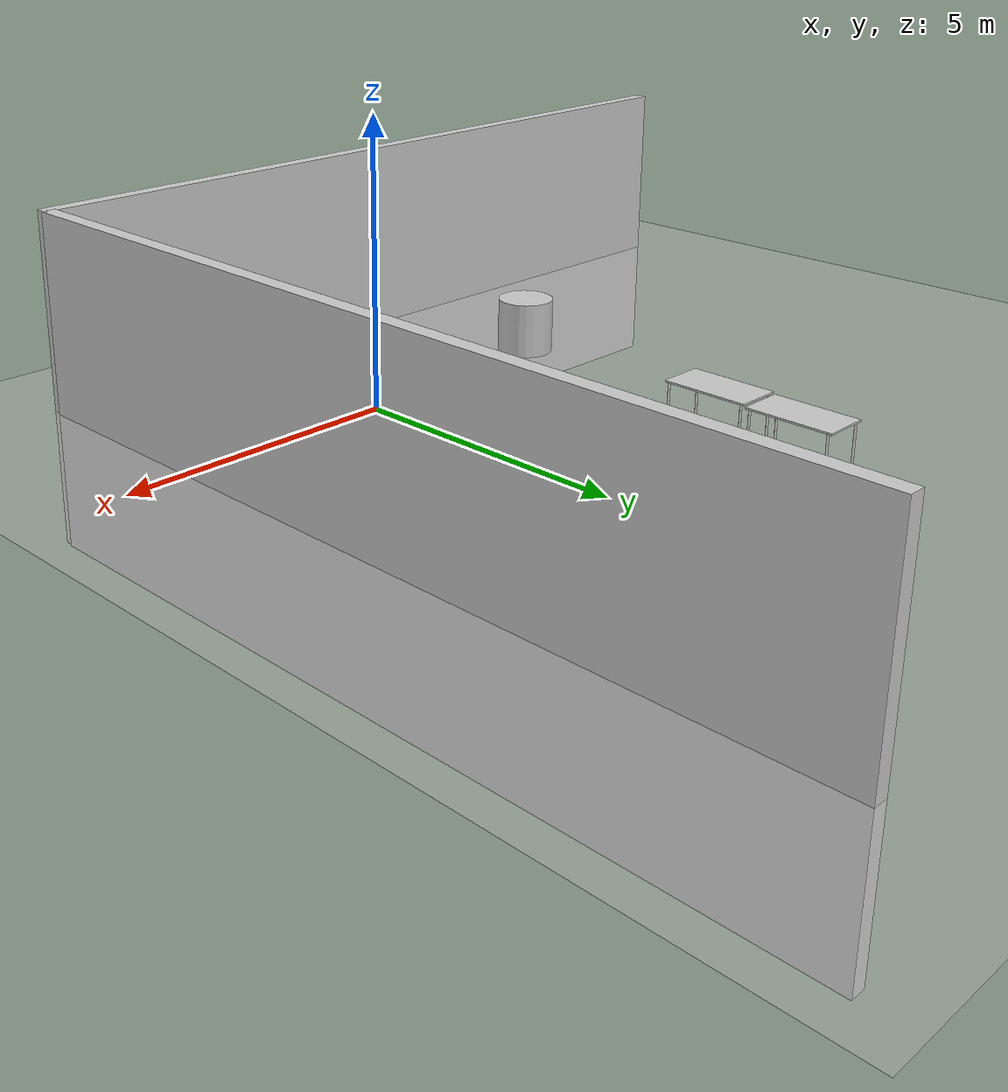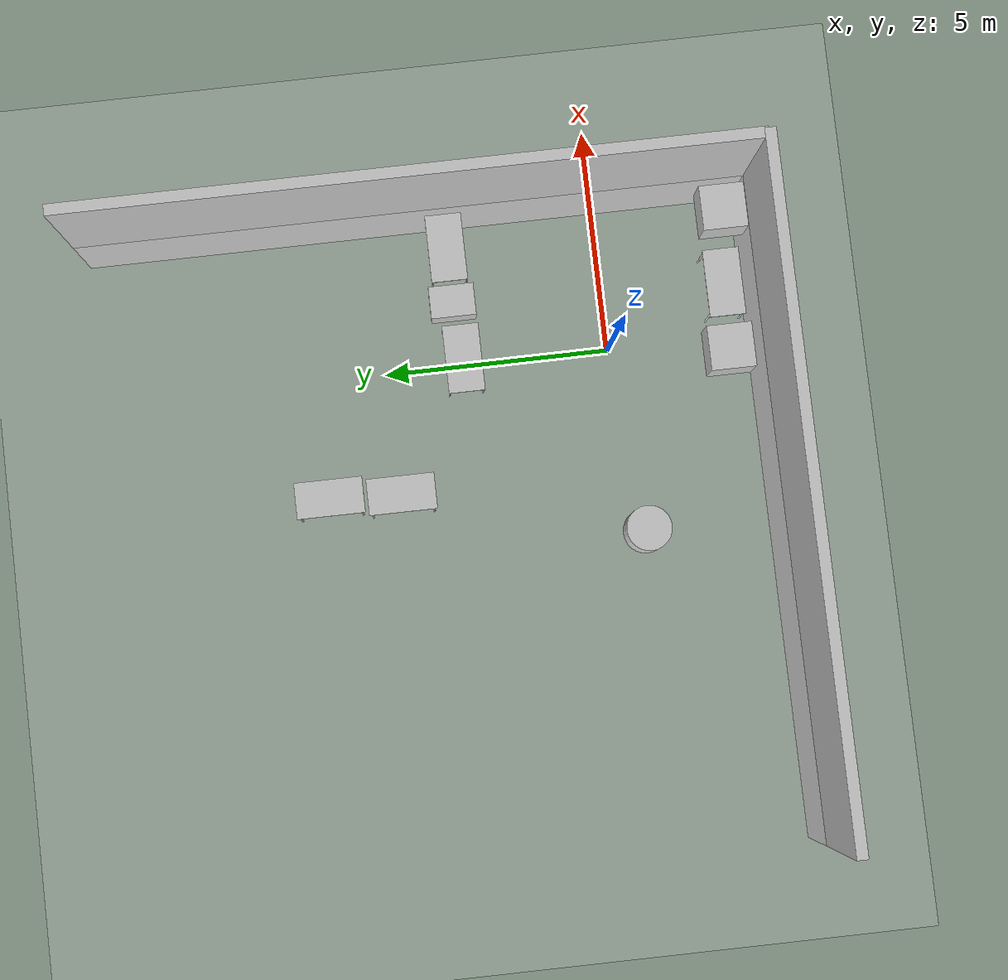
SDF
<sdf version='1.9'>
  <world name='default'>
    <gravity>0 0 -9.8</gravity>
    <magnetic_field>6e-06 2.3e-05 -4.2e-05</magnetic_field>
    <atmosphere type='adiabatic'/>
    <physics type='ode'>
      <max_step_size>0.001</max_step_size>
      <real_time_factor>1</real_time_factor>
      <real_time_update_rate>1000</real_time_update_rate>
    </physics>
    <scene>
      <ambient>1 1 1 1</ambient>
      <background>0.8 0.8 0.8 1</background>
      <shadows>true</shadows>
    </scene>
    <gui fullscreen='false'>
      <camera name='user_camera'>
        <pose>9.04491 1.84618 16.4829 0 1.23564 -3.13897</pose>
        <view_controller>orbit</view_controller>
        <projection_type>perspective</projection_type>
      </camera>
    </gui>
    <model name='ground_plane'>
      <static>true</static>
      <link name='link'>
        <collision name='collision'>
          <geometry>
            <plane>
              <normal>0 0 1</normal>
              <size>100 100</size>
            </plane>
          </geometry>
          <surface>
            <friction>
              <ode>
                <mu>100</mu>
                <mu2>50</mu2>
              </ode>
              <torsional>
                <ode/>
              </torsional>
            </friction>
            <contact>
              <ode/>
            </contact>
            <bounce/>
          </surface>
          <max_contacts>10</max_contacts>
        </collision>
        <visual name='visual'>
          <cast_shadows>false</cast_shadows>
          <geometry>
            <plane>
              <normal>0 0 1</normal>
              <size>100 100</size>
            </plane>
          </geometry>
          <material>
            <ambient>0.8 0.8 0.8 1</ambient>
            <diffuse>0.8 0.8 0.8 1</diffuse>
            <specular>0.8 0.8 0.8 1</specular>
          </material>
        </visual>
        <self_collide>false</self_collide>
        <enable_wind>false</enable_wind>
        <kinematic>false</kinematic>
        <pose>0 0 0 0 -0 0</pose>
        <inertial>
          <pose>0 0 0 0 -0 0</pose>
          <mass>1</mass>
          <inertia>
            <ixx>1</ixx>
            <ixy>0</ixy>
            <ixz>0</ixz>
            <iyy>1</iyy>
            <iyz>0</iyz>
            <izz>1</izz>
          </inertia>
        </inertial>
      </link>
      <pose>0 0 0 0 -0 0</pose>
      <self_collide>false</self_collide>
    </model>
    <model name='table'>
      <static>true</static>
      <link name='link'>
        <collision name='surface'>
          <pose>0 0 1 0 -0 0</pose>
          <geometry>
            <box>
              <size>1.5 0.8 0.03</size>
            </box>
          </geometry>
          <surface>
            <friction>
              <ode>
                <mu>0.59999999999999998</mu>
                <mu2>0.59999999999999998</mu2>
              </ode>
              <torsional>
                <ode/>
              </torsional>
            </friction>
            <contact>
              <ode/>
            </contact>
            <bounce/>
          </surface>
          <max_contacts>10</max_contacts>
        </collision>
        <visual name='visual1'>
          <pose>0 0 1 0 -0 0</pose>
          <geometry>
            <box>
              <size>1.5 0.8 0.03</size>
            </box>
          </geometry>
          <material>
            <ambient>0.8 0.8 0.8 1</ambient>
            <diffuse>0.8 0.8 0.8 1</diffuse>
            <specular>0.8 0.8 0.8 1</specular>
          </material>
        </visual>
        <collision name='front_left_leg'>
          <pose>0.68 0.38 0.5 0 -0 0</pose>
          <geometry>
            <cylinder>
              <radius>0.02</radius>
              <length>1</length>
            </cylinder>
          </geometry>
          <max_contacts>10</max_contacts>
          <surface>
            <contact>
              <ode/>
            </contact>
            <bounce/>
            <friction>
              <torsional>
                <ode/>
              </torsional>
              <ode/>
            </friction>
          </surface>
        </collision>
        <visual name='front_left_leg'>
          <pose>0.68 0.38 0.5 0 -0 0</pose>
          <geometry>
            <cylinder>
              <radius>0.02</radius>
              <length>1</length>
            </cylinder>
          </geometry>
          <material>
            <ambient>0.8 0.8 0.8 1</ambient>
            <diffuse>0.8 0.8 0.8 1</diffuse>
            <specular>0.8 0.8 0.8 1</specular>
          </material>
        </visual>
        <collision name='front_right_leg'>
          <pose>0.68 -0.38 0.5 0 -0 0</pose>
          <geometry>
            <cylinder>
              <radius>0.02</radius>
              <length>1</length>
            </cylinder>
          </geometry>
          <max_contacts>10</max_contacts>
          <surface>
            <contact>
              <ode/>
            </contact>
            <bounce/>
            <friction>
              <torsional>
                <ode/>
              </torsional>
              <ode/>
            </friction>
          </surface>
        </collision>
        <visual name='front_right_leg'>
          <pose>0.68 -0.38 0.5 0 -0 0</pose>
          <geometry>
            <cylinder>
              <radius>0.02</radius>
              <length>1</length>
            </cylinder>
          </geometry>
          <material>
            <ambient>0.8 0.8 0.8 1</ambient>
            <diffuse>0.8 0.8 0.8 1</diffuse>
            <specular>0.8 0.8 0.8 1</specular>
          </material>
        </visual>
        <collision name='back_right_leg'>
          <pose>-0.68 -0.38 0.5 0 -0 0</pose>
          <geometry>
            <cylinder>
              <radius>0.02</radius>
              <length>1</length>
            </cylinder>
          </geometry>
          <max_contacts>10</max_contacts>
          <surface>
            <contact>
              <ode/>
            </contact>
            <bounce/>
            <friction>
              <torsional>
                <ode/>
              </torsional>
              <ode/>
            </friction>
          </surface>
        </collision>
        <visual name='back_right_leg'>
          <pose>-0.68 -0.38 0.5 0 -0 0</pose>
          <geometry>
            <cylinder>
              <radius>0.02</radius>
              <length>1</length>
            </cylinder>
          </geometry>
          <material>
            <ambient>0.8 0.8 0.8 1</ambient>
            <diffuse>0.8 0.8 0.8 1</diffuse>
            <specular>0.8 0.8 0.8 1</specular>
          </material>
        </visual>
        <collision name='back_left_leg'>
          <pose>-0.68 0.38 0.5 0 -0 0</pose>
          <geometry>
            <cylinder>
              <radius>0.02</radius>
              <length>1</length>
            </cylinder>
          </geometry>
          <max_contacts>10</max_contacts>
          <surface>
            <contact>
              <ode/>
            </contact>
            <bounce/>
            <friction>
              <torsional>
                <ode/>
              </torsional>
              <ode/>
            </friction>
          </surface>
        </collision>
        <visual name='back_left_leg'>
          <pose>-0.68 0.38 0.5 0 -0 0</pose>
          <geometry>
            <cylinder>
              <radius>0.02</radius>
              <length>1</length>
            </cylinder>
          </geometry>
          <material>
            <ambient>0.8 0.8 0.8 1</ambient>
            <diffuse>0.8 0.8 0.8 1</diffuse>
            <specular>0.8 0.8 0.8 1</specular>
          </material>
        </visual>
        <self_collide>false</self_collide>
        <enable_wind>false</enable_wind>
        <kinematic>false</kinematic>
        <pose>0 0 0 0 -0 0</pose>
        <inertial>
          <pose>0 0 0 0 -0 0</pose>
          <mass>1</mass>
          <inertia>
            <ixx>1</ixx>
            <ixy>0</ixy>
            <ixz>0</ixz>
            <iyy>1</iyy>
            <iyz>0</iyz>
            <izz>1</izz>
          </inertia>
        </inertial>
      </link>
      <pose>0.063923 3.25007 0 0 -0 0</pose>
      <self_collide>false</self_collide>
    </model>
    <model name='table_clone'>
      <static>true</static>
      <link name='link'>
        <collision name='surface'>
          <pose>0 0 1 0 -0 0</pose>
          <geometry>
            <box>
              <size>1.5 0.8 0.03</size>
            </box>
          </geometry>
          <surface>
            <friction>
              <ode>
                <mu>0.59999999999999998</mu>
                <mu2>0.59999999999999998</mu2>
              </ode>
              <torsional>
                <ode/>
              </torsional>
            </friction>
            <contact>
              <ode/>
            </contact>
            <bounce/>
          </surface>
          <max_contacts>10</max_contacts>
        </collision>
        <visual name='visual1'>
          <pose>0 0 1 0 -0 0</pose>
          <geometry>
            <box>
              <size>1.5 0.8 0.03</size>
            </box>
          </geometry>
          <material>
            <ambient>0.8 0.8 0.8 1</ambient>
            <diffuse>0.8 0.8 0.8 1</diffuse>
            <specular>0.8 0.8 0.8 1</specular>
          </material>
        </visual>
        <collision name='front_left_leg'>
          <pose>0.68 0.38 0.5 0 -0 0</pose>
          <geometry>
            <cylinder>
              <radius>0.02</radius>
              <length>1</length>
            </cylinder>
          </geometry>
          <max_contacts>10</max_contacts>
          <surface>
            <contact>
              <ode/>
            </contact>
            <bounce/>
            <friction>
              <torsional>
                <ode/>
              </torsional>
              <ode/>
            </friction>
          </surface>
        </collision>
        <visual name='front_left_leg'>
          <pose>0.68 0.38 0.5 0 -0 0</pose>
          <geometry>
            <cylinder>
              <radius>0.02</radius>
              <length>1</length>
            </cylinder>
          </geometry>
          <material>
            <ambient>0.8 0.8 0.8 1</ambient>
            <diffuse>0.8 0.8 0.8 1</diffuse>
            <specular>0.8 0.8 0.8 1</specular>
          </material>
        </visual>
        <collision name='front_right_leg'>
          <pose>0.68 -0.38 0.5 0 -0 0</pose>
          <geometry>
            <cylinder>
              <radius>0.02</radius>
              <length>1</length>
            </cylinder>
          </geometry>
          <max_contacts>10</max_contacts>
          <surface>
            <contact>
              <ode/>
            </contact>
            <bounce/>
            <friction>
              <torsional>
                <ode/>
              </torsional>
              <ode/>
            </friction>
          </surface>
        </collision>
        <visual name='front_right_leg'>
          <pose>0.68 -0.38 0.5 0 -0 0</pose>
          <geometry>
            <cylinder>
              <radius>0.02</radius>
              <length>1</length>
            </cylinder>
          </geometry>
          <material>
            <ambient>0.8 0.8 0.8 1</ambient>
            <diffuse>0.8 0.8 0.8 1</diffuse>
            <specular>0.8 0.8 0.8 1</specular>
          </material>
        </visual>
        <collision name='back_right_leg'>
          <pose>-0.68 -0.38 0.5 0 -0 0</pose>
          <geometry>
            <cylinder>
              <radius>0.02</radius>
              <length>1</length>
            </cylinder>
          </geometry>
          <max_contacts>10</max_contacts>
          <surface>
            <contact>
              <ode/>
            </contact>
            <bounce/>
            <friction>
              <torsional>
                <ode/>
              </torsional>
              <ode/>
            </friction>
          </surface>
        </collision>
        <visual name='back_right_leg'>
          <pose>-0.68 -0.38 0.5 0 -0 0</pose>
          <geometry>
            <cylinder>
              <radius>0.02</radius>
              <length>1</length>
            </cylinder>
          </geometry>
          <material>
            <ambient>0.8 0.8 0.8 1</ambient>
            <diffuse>0.8 0.8 0.8 1</diffuse>
            <specular>0.8 0.8 0.8 1</specular>
          </material>
        </visual>
        <collision name='back_left_leg'>
          <pose>-0.68 0.38 0.5 0 -0 0</pose>
          <geometry>
            <cylinder>
              <radius>0.02</radius>
              <length>1</length>
            </cylinder>
          </geometry>
          <max_contacts>10</max_contacts>
          <surface>
            <contact>
              <ode/>
            </contact>
            <bounce/>
            <friction>
              <torsional>
                <ode/>
              </torsional>
              <ode/>
            </friction>
          </surface>
        </collision>
        <visual name='back_left_leg'>
          <pose>-0.68 0.38 0.5 0 -0 0</pose>
          <geometry>
            <cylinder>
              <radius>0.02</radius>
              <length>1</length>
            </cylinder>
          </geometry>
          <material>
            <ambient>0.8 0.8 0.8 1</ambient>
            <diffuse>0.8 0.8 0.8 1</diffuse>
            <specular>0.8 0.8 0.8 1</specular>
          </material>
        </visual>
        <self_collide>false</self_collide>
        <enable_wind>false</enable_wind>
        <kinematic>false</kinematic>
        <pose>0 0 0 0 -0 0</pose>
        <inertial>
          <pose>0 0 0 0 -0 0</pose>
          <mass>1</mass>
          <inertia>
            <ixx>1</ixx>
            <ixy>0</ixy>
            <ixz>0</ixz>
            <iyy>1</iyy>
            <iyz>0</iyz>
            <izz>1</izz>
          </inertia>
        </inertial>
      </link>
      <pose>-2.76781 4.92557 0 0 -0 1.5708</pose>
      <self_collide>false</self_collide>
    </model>
    <model name='unit_box'>
      <pose>2.81303 -2.84881 0.5 0 -0 0</pose>
      <link name='link'>
        <inertial>
          <mass>1</mass>
          <inertia>
            <ixx>0.16666700000000001</ixx>
            <ixy>0</ixy>
            <ixz>0</ixz>
            <iyy>0.16666700000000001</iyy>
            <iyz>0</iyz>
            <izz>0.16666700000000001</izz>
          </inertia>
          <pose>0 0 0 0 -0 0</pose>
        </inertial>
        <collision name='collision'>
          <geometry>
            <box>
              <size>1 1 1</size>
            </box>
          </geometry>
          <max_contacts>10</max_contacts>
          <surface>
            <contact>
              <ode/>
            </contact>
            <bounce/>
            <friction>
              <torsional>
                <ode/>
              </torsional>
              <ode/>
            </friction>
          </surface>
        </collision>
        <visual name='visual'>
          <geometry>
            <box>
              <size>1 1 1</size>
            </box>
          </geometry>
          <material>
            <ambient>0.8 0.8 0.8 1</ambient>
            <diffuse>0.8 0.8 0.8 1</diffuse>
            <specular>0.8 0.8 0.8 1</specular>
          </material>
        </visual>
        <self_collide>false</self_collide>
        <enable_wind>false</enable_wind>
        <kinematic>false</kinematic>
        <pose>0 0 0 0 -0 0</pose>
      </link>
      <static>false</static>
      <self_collide>false</self_collide>
    </model>
    <model name='unit_box_0'>
      <pose>-0.312824 -2.65045 0.5 0 -0 0</pose>
      <link name='link'>
        <inertial>
          <mass>1</mass>
          <inertia>
            <ixx>0.16666700000000001</ixx>
            <ixy>0</ixy>
            <ixz>0</ixz>
            <iyy>0.16666700000000001</iyy>
            <iyz>0</iyz>
            <izz>0.16666700000000001</izz>
          </inertia>
          <pose>0 0 0 0 -0 0</pose>
        </inertial>
        <collision name='collision'>
          <geometry>
            <box>
              <size>1 1.00001 1</size>
            </box>
          </geometry>
          <max_contacts>10</max_contacts>
          <surface>
            <contact>
              <ode/>
            </contact>
            <bounce/>
            <friction>
              <torsional>
                <ode/>
              </torsional>
              <ode/>
            </friction>
          </surface>
        </collision>
        <visual name='visual'>
          <geometry>
            <box>
              <size>1 1.00001 1</size>
            </box>
          </geometry>
          <material>
            <ambient>0.8 0.8 0.8 1</ambient>
            <diffuse>0.8 0.8 0.8 1</diffuse>
            <specular>0.8 0.8 0.8 1</specular>
          </material>
        </visual>
        <self_collide>false</self_collide>
        <enable_wind>false</enable_wind>
        <kinematic>false</kinematic>
        <pose>0 0 0 0 -0 0</pose>
      </link>
      <static>false</static>
      <self_collide>false</self_collide>
    </model>
    <model name='unit_box_0_clone'>
      <pose>3.78673 4.05805 0.5 0 -0 0</pose>
      <link name='link'>
        <inertial>
          <mass>1</mass>
          <inertia>
            <ixx>0.16666700000000001</ixx>
            <ixy>0</ixy>
            <ixz>0</ixz>
            <iyy>0.16666700000000001</iyy>
            <iyz>0</iyz>
            <izz>0.16666700000000001</izz>
          </inertia>
          <pose>0 0 0 0 -0 0</pose>
        </inertial>
        <collision name='collision'>
          <geometry>
            <box>
              <size>0.251662 15.3227 5.91896</size>
            </box>
          </geometry>
          <max_contacts>10</max_contacts>
          <surface>
            <contact>
              <ode/>
            </contact>
            <bounce/>
            <friction>
              <torsional>
                <ode/>
              </torsional>
              <ode/>
            </friction>
          </surface>
        </collision>
        <visual name='visual'>
          <geometry>
            <box>
              <size>0.251662 15.3227 5.91896</size>
            </box>
          </geometry>
          <material>
            <ambient>0.8 0.8 0.8 1</ambient>
            <diffuse>0.8 0.8 0.8 1</diffuse>
            <specular>0.8 0.8 0.8 1</specular>
          </material>
        </visual>
        <self_collide>false</self_collide>
        <enable_wind>false</enable_wind>
        <kinematic>false</kinematic>
        <pose>0 0 0 0 -0 0</pose>
      </link>
      <static>false</static>
      <self_collide>false</self_collide>
    </model>
    <model name='unit_box_0_clone_clone'>
      <pose>-3.78057 -3.65167 0.5 0 0 -1.5708</pose>
      <link name='link'>
        <inertial>
          <mass>1</mass>
          <inertia>
            <ixx>0.16666700000000001</ixx>
            <ixy>0</ixy>
            <ixz>0</ixz>
            <iyy>0.16666700000000001</iyy>
            <iyz>0</iyz>
            <izz>0.16666700000000001</izz>
          </inertia>
          <pose>0 0 0 0 -0 0</pose>
        </inertial>
        <collision name='collision'>
          <geometry>
            <box>
              <size>0.251662 15.3227 5.91896</size>
            </box>
          </geometry>
          <max_contacts>10</max_contacts>
          <surface>
            <contact>
              <ode/>
            </contact>
            <bounce/>
            <friction>
              <torsional>
                <ode/>
              </torsional>
              <ode/>
            </friction>
          </surface>
        </collision>
        <visual name='visual'>
          <geometry>
            <box>
              <size>0.251662 15.3227 5.91896</size>
            </box>
          </geometry>
          <material>
            <ambient>0.8 0.8 0.8 1</ambient>
            <diffuse>0.8 0.8 0.8 1</diffuse>
            <specular>0.8 0.8 0.8 1</specular>
          </material>
        </visual>
        <self_collide>false</self_collide>
        <enable_wind>false</enable_wind>
        <kinematic>false</kinematic>
        <pose>0 0 0 0 -0 0</pose>
      </link>
      <static>false</static>
      <self_collide>false</self_collide>
    </model>
    <model name='unit_box_clone'>
      <pose>1.38872 3.35459 0.5 0 -0 0</pose>
      <link name='link'>
        <inertial>
          <mass>1</mass>
          <inertia>
            <ixx>0.16666700000000001</ixx>
            <ixy>0</ixy>
            <ixz>0</ixz>
            <iyy>0.16666700000000001</iyy>
            <iyz>0</iyz>
            <izz>0.16666700000000001</izz>
          </inertia>
          <pose>0 0 0 0 -0 0</pose>
        </inertial>
        <collision name='collision'>
          <geometry>
            <box>
              <size>0.713247 1 0.665449</size>
            </box>
          </geometry>
          <max_contacts>10</max_contacts>
          <surface>
            <contact>
              <ode/>
            </contact>
            <bounce/>
            <friction>
              <torsional>
                <ode/>
              </torsional>
              <ode/>
            </friction>
          </surface>
        </collision>
        <visual name='visual'>
          <geometry>
            <box>
              <size>0.713247 1 0.665449</size>
            </box>
          </geometry>
          <material>
            <ambient>0.8 0.8 0.8 1</ambient>
            <diffuse>0.8 0.8 0.8 1</diffuse>
            <specular>0.8 0.8 0.8 1</specular>
          </material>
        </visual>
        <self_collide>false</self_collide>
        <enable_wind>false</enable_wind>
        <kinematic>false</kinematic>
        <pose>0 0 0 0 -0 0</pose>
      </link>
      <static>false</static>
      <self_collide>false</self_collide>
    </model>
    <model name='table_clone_clone'>
      <static>true</static>
      <link name='link'>
        <collision name='surface'>
          <pose>0 0 1 0 -0 0</pose>
          <geometry>
            <box>
              <size>1.5 0.8 0.03</size>
            </box>
          </geometry>
          <surface>
            <friction>
              <ode>
                <mu>0.59999999999999998</mu>
                <mu2>0.59999999999999998</mu2>
              </ode>
              <torsional>
                <ode/>
              </torsional>
            </friction>
            <contact>
              <ode/>
            </contact>
            <bounce/>
          </surface>
          <max_contacts>10</max_contacts>
        </collision>
        <visual name='visual1'>
          <pose>0 0 1 0 -0 0</pose>
          <geometry>
            <box>
              <size>1.5 0.8 0.03</size>
            </box>
          </geometry>
          <material>
            <ambient>0.8 0.8 0.8 1</ambient>
            <diffuse>0.8 0.8 0.8 1</diffuse>
            <specular>0.8 0.8 0.8 1</specular>
          </material>
        </visual>
        <collision name='front_left_leg'>
          <pose>0.68 0.38 0.5 0 -0 0</pose>
          <geometry>
            <cylinder>
              <radius>0.02</radius>
              <length>1</length>
            </cylinder>
          </geometry>
          <max_contacts>10</max_contacts>
          <surface>
            <contact>
              <ode/>
            </contact>
            <bounce/>
            <friction>
              <torsional>
                <ode/>
              </torsional>
              <ode/>
            </friction>
          </surface>
        </collision>
        <visual name='front_left_leg'>
          <pose>0.68 0.38 0.5 0 -0 0</pose>
          <geometry>
            <cylinder>
              <radius>0.02</radius>
              <length>1</length>
            </cylinder>
          </geometry>
          <material>
            <ambient>0.8 0.8 0.8 1</ambient>
            <diffuse>0.8 0.8 0.8 1</diffuse>
            <specular>0.8 0.8 0.8 1</specular>
          </material>
        </visual>
        <collision name='front_right_leg'>
          <pose>0.68 -0.38 0.5 0 -0 0</pose>
          <geometry>
            <cylinder>
              <radius>0.02</radius>
              <length>1</length>
            </cylinder>
          </geometry>
          <max_contacts>10</max_contacts>
          <surface>
            <contact>
              <ode/>
            </contact>
            <bounce/>
            <friction>
              <torsional>
                <ode/>
              </torsional>
              <ode/>
            </friction>
          </surface>
        </collision>
        <visual name='front_right_leg'>
          <pose>0.68 -0.38 0.5 0 -0 0</pose>
          <geometry>
            <cylinder>
              <radius>0.02</radius>
              <length>1</length>
            </cylinder>
          </geometry>
          <material>
            <ambient>0.8 0.8 0.8 1</ambient>
            <diffuse>0.8 0.8 0.8 1</diffuse>
            <specular>0.8 0.8 0.8 1</specular>
          </material>
        </visual>
        <collision name='back_right_leg'>
          <pose>-0.68 -0.38 0.5 0 -0 0</pose>
          <geometry>
            <cylinder>
              <radius>0.02</radius>
              <length>1</length>
            </cylinder>
          </geometry>
          <max_contacts>10</max_contacts>
          <surface>
            <contact>
              <ode/>
            </contact>
            <bounce/>
            <friction>
              <torsional>
                <ode/>
              </torsional>
              <ode/>
            </friction>
          </surface>
        </collision>
        <visual name='back_right_leg'>
          <pose>-0.68 -0.38 0.5 0 -0 0</pose>
          <geometry>
            <cylinder>
              <radius>0.02</radius>
              <length>1</length>
            </cylinder>
          </geometry>
          <material>
            <ambient>0.8 0.8 0.8 1</ambient>
            <diffuse>0.8 0.8 0.8 1</diffuse>
            <specular>0.8 0.8 0.8 1</specular>
          </material>
        </visual>
        <collision name='back_left_leg'>
          <pose>-0.68 0.38 0.5 0 -0 0</pose>
          <geometry>
            <cylinder>
              <radius>0.02</radius>
              <length>1</length>
            </cylinder>
          </geometry>
          <max_contacts>10</max_contacts>
          <surface>
            <contact>
              <ode/>
            </contact>
            <bounce/>
            <friction>
              <torsional>
                <ode/>
              </torsional>
              <ode/>
            </friction>
          </surface>
        </collision>
        <visual name='back_left_leg'>
          <pose>-0.68 0.38 0.5 0 -0 0</pose>
          <geometry>
            <cylinder>
              <radius>0.02</radius>
              <length>1</length>
            </cylinder>
          </geometry>
          <material>
            <ambient>0.8 0.8 0.8 1</ambient>
            <diffuse>0.8 0.8 0.8 1</diffuse>
            <specular>0.8 0.8 0.8 1</specular>
          </material>
        </visual>
        <self_collide>false</self_collide>
        <enable_wind>false</enable_wind>
        <kinematic>false</kinematic>
        <pose>0 0 0 0 -0 0</pose>
        <inertial>
          <pose>0 0 0 0 -0 0</pose>
          <mass>1</mass>
          <inertia>
            <ixx>1</ixx>
            <ixy>0</ixy>
            <ixz>0</ixz>
            <iyy>1</iyy>
            <iyz>0</iyz>
            <izz>1</izz>
          </inertia>
        </inertial>
      </link>
      <pose>1.11696 -2.65226 0 0 -0 0</pose>
      <self_collide>false</self_collide>
    </model>
    <model name='table_clone_clone_clone'>
      <static>true</static>
      <link name='link'>
        <collision name='surface'>
          <pose>0 0 1 0 -0 0</pose>
          <geometry>
            <box>
              <size>1.5 0.8 0.03</size>
            </box>
          </geometry>
          <surface>
            <friction>
              <ode>
                <mu>0.59999999999999998</mu>
                <mu2>0.59999999999999998</mu2>
              </ode>
              <torsional>
                <ode/>
              </torsional>
            </friction>
            <contact>
              <ode/>
            </contact>
            <bounce/>
          </surface>
          <max_contacts>10</max_contacts>
        </collision>
        <visual name='visual1'>
          <pose>0 0 1 0 -0 0</pose>
          <geometry>
            <box>
              <size>1.5 0.8 0.03</size>
            </box>
          </geometry>
          <material>
            <ambient>0.8 0.8 0.8 1</ambient>
            <diffuse>0.8 0.8 0.8 1</diffuse>
            <specular>0.8 0.8 0.8 1</specular>
          </material>
        </visual>
        <collision name='front_left_leg'>
          <pose>0.68 0.38 0.5 0 -0 0</pose>
          <geometry>
            <cylinder>
              <radius>0.02</radius>
              <length>1</length>
            </cylinder>
          </geometry>
          <max_contacts>10</max_contacts>
          <surface>
            <contact>
              <ode/>
            </contact>
            <bounce/>
            <friction>
              <torsional>
                <ode/>
              </torsional>
              <ode/>
            </friction>
          </surface>
        </collision>
        <visual name='front_left_leg'>
          <pose>0.68 0.38 0.5 0 -0 0</pose>
          <geometry>
            <cylinder>
              <radius>0.02</radius>
              <length>1</length>
            </cylinder>
          </geometry>
          <material>
            <ambient>0.8 0.8 0.8 1</ambient>
            <diffuse>0.8 0.8 0.8 1</diffuse>
            <specular>0.8 0.8 0.8 1</specular>
          </material>
        </visual>
        <collision name='front_right_leg'>
          <pose>0.68 -0.38 0.5 0 -0 0</pose>
          <geometry>
            <cylinder>
              <radius>0.02</radius>
              <length>1</length>
            </cylinder>
          </geometry>
          <max_contacts>10</max_contacts>
          <surface>
            <contact>
              <ode/>
            </contact>
            <bounce/>
            <friction>
              <torsional>
                <ode/>
              </torsional>
              <ode/>
            </friction>
          </surface>
        </collision>
        <visual name='front_right_leg'>
          <pose>0.68 -0.38 0.5 0 -0 0</pose>
          <geometry>
            <cylinder>
              <radius>0.02</radius>
              <length>1</length>
            </cylinder>
          </geometry>
          <material>
            <ambient>0.8 0.8 0.8 1</ambient>
            <diffuse>0.8 0.8 0.8 1</diffuse>
            <specular>0.8 0.8 0.8 1</specular>
          </material>
        </visual>
        <collision name='back_right_leg'>
          <pose>-0.68 -0.38 0.5 0 -0 0</pose>
          <geometry>
            <cylinder>
              <radius>0.02</radius>
              <length>1</length>
            </cylinder>
          </geometry>
          <max_contacts>10</max_contacts>
          <surface>
            <contact>
              <ode/>
            </contact>
            <bounce/>
            <friction>
              <torsional>
                <ode/>
              </torsional>
              <ode/>
            </friction>
          </surface>
        </collision>
        <visual name='back_right_leg'>
          <pose>-0.68 -0.38 0.5 0 -0 0</pose>
          <geometry>
            <cylinder>
              <radius>0.02</radius>
              <length>1</length>
            </cylinder>
          </geometry>
          <material>
            <ambient>0.8 0.8 0.8 1</ambient>
            <diffuse>0.8 0.8 0.8 1</diffuse>
            <specular>0.8 0.8 0.8 1</specular>
          </material>
        </visual>
        <collision name='back_left_leg'>
          <pose>-0.68 0.38 0.5 0 -0 0</pose>
          <geometry>
            <cylinder>
              <radius>0.02</radius>
              <length>1</length>
            </cylinder>
          </geometry>
          <max_contacts>10</max_contacts>
          <surface>
            <contact>
              <ode/>
            </contact>
            <bounce/>
            <friction>
              <torsional>
                <ode/>
              </torsional>
              <ode/>
            </friction>
          </surface>
        </collision>
        <visual name='back_left_leg'>
          <pose>-0.68 0.38 0.5 0 -0 0</pose>
          <geometry>
            <cylinder>
              <radius>0.02</radius>
              <length>1</length>
            </cylinder>
          </geometry>
          <material>
            <ambient>0.8 0.8 0.8 1</ambient>
            <diffuse>0.8 0.8 0.8 1</diffuse>
            <specular>0.8 0.8 0.8 1</specular>
          </material>
        </visual>
        <self_collide>false</self_collide>
        <enable_wind>false</enable_wind>
        <kinematic>false</kinematic>
        <pose>0 0 0 0 -0 0</pose>
        <inertial>
          <pose>0 0 0 0 -0 0</pose>
          <mass>1</mass>
          <inertia>
            <ixx>1</ixx>
            <ixy>0</ixy>
            <ixz>0</ixz>
            <iyy>1</iyy>
            <iyz>0</iyz>
            <izz>1</izz>
          </inertia>
        </inertial>
      </link>
      <pose>-2.68198 6.50374 0 0 -0 1.5708</pose>
      <self_collide>false</self_collide>
    </model>
    <model name='unit_cylinder'>
      <pose>-4.10278 -0.379177 0.5 0 -0 0</pose>
      <link name='link'>
        <inertial>
          <mass>1</mass>
          <inertia>
            <ixx>0.14583299999999999</ixx>
            <ixy>0</ixy>
            <ixz>0</ixz>
            <iyy>0.14583299999999999</iyy>
            <iyz>0</iyz>
            <izz>0.125</izz>
          </inertia>
          <pose>0 0 0 0 -0 0</pose>
        </inertial>
        <collision name='collision'>
          <geometry>
            <cylinder>
              <radius>0.5</radius>
              <length>1</length>
            </cylinder>
          </geometry>
          <max_contacts>10</max_contacts>
          <surface>
            <contact>
              <ode/>
            </contact>
            <bounce/>
            <friction>
              <torsional>
                <ode/>
              </torsional>
              <ode/>
            </friction>
          </surface>
        </collision>
        <visual name='visual'>
          <geometry>
            <cylinder>
              <radius>0.5</radius>
              <length>1</length>
            </cylinder>
          </geometry>
          <material>
            <ambient>0.8 0.8 0.8 1</ambient>
            <diffuse>0.8 0.8 0.8 1</diffuse>
            <specular>0.8 0.8 0.8 1</specular>
          </material>
        </visual>
        <self_collide>false</self_collide>
        <enable_wind>false</enable_wind>
        <kinematic>false</kinematic>
        <pose>0 0 0 0 -0 0</pose>
      </link>
      <static>false</static>
      <self_collide>false</self_collide>
    </model>
    <model name='table_clone_clone_0'>
      <static>true</static>
      <link name='link'>
        <collision name='surface'>
          <pose>0 0 1 0 -0 0</pose>
          <geometry>
            <box>
              <size>1.5 0.8 0.03</size>
            </box>
          </geometry>
          <surface>
            <friction>
              <ode>
                <mu>0.59999999999999998</mu>
                <mu2>0.59999999999999998</mu2>
              </ode>
              <torsional>
                <ode/>
              </torsional>
            </friction>
            <contact>
              <ode/>
            </contact>
            <bounce/>
          </surface>
          <max_contacts>10</max_contacts>
        </collision>
        <visual name='visual1'>
          <pose>0 0 1 0 -0 0</pose>
          <geometry>
            <box>
              <size>1.5 0.8 0.03</size>
            </box>
          </geometry>
          <material>
            <ambient>0.8 0.8 0.8 1</ambient>
            <diffuse>0.8 0.8 0.8 1</diffuse>
            <specular>0.8 0.8 0.8 1</specular>
          </material>
        </visual>
        <collision name='front_left_leg'>
          <pose>0.68 0.38 0.5 0 -0 0</pose>
          <geometry>
            <cylinder>
              <radius>0.02</radius>
              <length>1</length>
            </cylinder>
          </geometry>
          <max_contacts>10</max_contacts>
          <surface>
            <contact>
              <ode/>
            </contact>
            <bounce/>
            <friction>
              <torsional>
                <ode/>
              </torsional>
              <ode/>
            </friction>
          </surface>
        </collision>
        <visual name='front_left_leg'>
          <pose>0.68 0.38 0.5 0 -0 0</pose>
          <geometry>
            <cylinder>
              <radius>0.02</radius>
              <length>1</length>
            </cylinder>
          </geometry>
          <material>
            <ambient>0.8 0.8 0.8 1</ambient>
            <diffuse>0.8 0.8 0.8 1</diffuse>
            <specular>0.8 0.8 0.8 1</specular>
          </material>
        </visual>
        <collision name='front_right_leg'>
          <pose>0.68 -0.38 0.5 0 -0 0</pose>
          <geometry>
            <cylinder>
              <radius>0.02</radius>
              <length>1</length>
            </cylinder>
          </geometry>
          <max_contacts>10</max_contacts>
          <surface>
            <contact>
              <ode/>
            </contact>
            <bounce/>
            <friction>
              <torsional>
                <ode/>
              </torsional>
              <ode/>
            </friction>
          </surface>
        </collision>
        <visual name='front_right_leg'>
          <pose>0.68 -0.38 0.5 0 -0 0</pose>
          <geometry>
            <cylinder>
              <radius>0.02</radius>
              <length>1</length>
            </cylinder>
          </geometry>
          <material>
            <ambient>0.8 0.8 0.8 1</ambient>
            <diffuse>0.8 0.8 0.8 1</diffuse>
            <specular>0.8 0.8 0.8 1</specular>
          </material>
        </visual>
        <collision name='back_right_leg'>
          <pose>-0.68 -0.38 0.5 0 -0 0</pose>
          <geometry>
            <cylinder>
              <radius>0.02</radius>
              <length>1</length>
            </cylinder>
          </geometry>
          <max_contacts>10</max_contacts>
          <surface>
            <contact>
              <ode/>
            </contact>
            <bounce/>
            <friction>
              <torsional>
                <ode/>
              </torsional>
              <ode/>
            </friction>
          </surface>
        </collision>
        <visual name='back_right_leg'>
          <pose>-0.68 -0.38 0.5 0 -0 0</pose>
          <geometry>
            <cylinder>
              <radius>0.02</radius>
              <length>1</length>
            </cylinder>
          </geometry>
          <material>
            <ambient>0.8 0.8 0.8 1</ambient>
            <diffuse>0.8 0.8 0.8 1</diffuse>
            <specular>0.8 0.8 0.8 1</specular>
          </material>
        </visual>
        <collision name='back_left_leg'>
          <pose>-0.68 0.38 0.5 0 -0 0</pose>
          <geometry>
            <cylinder>
              <radius>0.02</radius>
              <length>1</length>
            </cylinder>
          </geometry>
          <max_contacts>10</max_contacts>
          <surface>
            <contact>
              <ode/>
            </contact>
            <bounce/>
            <friction>
              <torsional>
                <ode/>
              </torsional>
              <ode/>
            </friction>
          </surface>
        </collision>
        <visual name='back_left_leg'>
          <pose>-0.68 0.38 0.5 0 -0 0</pose>
          <geometry>
            <cylinder>
              <radius>0.02</radius>
              <length>1</length>
            </cylinder>
          </geometry>
          <material>
            <ambient>0.8 0.8 0.8 1</ambient>
            <diffuse>0.8 0.8 0.8 1</diffuse>
            <specular>0.8 0.8 0.8 1</specular>
          </material>
        </visual>
        <self_collide>false</self_collide>
        <enable_wind>false</enable_wind>
        <kinematic>false</kinematic>
        <pose>0 0 0 0 -0 0</pose>
        <inertial>
          <pose>0 0 0 0 -0 0</pose>
          <mass>1</mass>
          <inertia>
            <ixx>1</ixx>
            <ixy>0</ixy>
            <ixz>0</ixz>
            <iyy>1</iyy>
            <iyz>0</iyz>
            <izz>1</izz>
          </inertia>
        </inertial>
      </link>
      <pose>2.55269 3.36311 0 0 -0 0</pose>
      <self_collide>false</self_collide>
    </model>
    <light name='sun' type='directional'>
      <pose>0 0 10 0 -0 0</pose>
      <cast_shadows>true</cast_shadows>
      <intensity>1</intensity>
      <direction>-0.5 0.1 -0.9</direction>
      <diffuse>0.8 0.8 0.8 1</diffuse>
      <specular>0.2 0.2 0.2 1</specular>
      <attenuation>
        <range>1000</range>
        <linear>0.01</linear>
        <constant>0.90000000000000002</constant>
        <quadratic>0.001</quadratic>
      </attenuation>
      <spot>
        <inner_angle>0</inner_angle>
        <outer_angle>0</outer_angle>
        <falloff>0</falloff>
      </spot>
    </light>
  </world>
</sdf>
